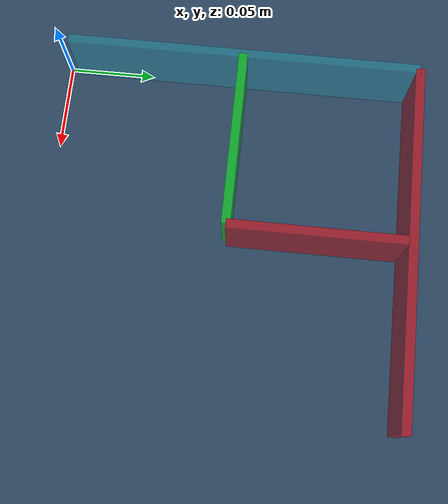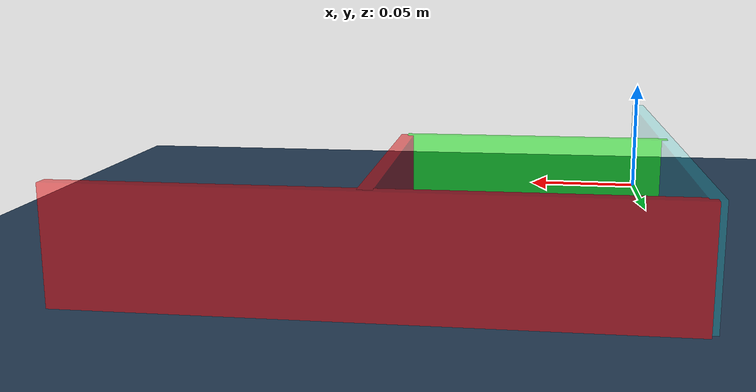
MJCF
<mujoco model="delta_array">
    <visual>
      <headlight diffuse="0.6 0.6 0.6" ambient="0.3 0.3 0.3" specular="0 0 0"/>
      <rgba haze="0.15 0.25 0.35 1"/>
    </visual>

    <asset>
      <texture type="skybox" builtin="gradient" rgb1="0.3 0.5 0.7" rgb2="0 0 0" width="512" height="3072"/>
      <texture type="2d" name="groundplane" builtin="checker" mark="edge" rgb1="0.2 0.3 0.4" rgb2="0.1 0.2 0.3"
        markrgb="0.8 0.8 0.8" width="300" height="300"/>
      <material name="groundplane" texture="groundplane" texuniform="true" texrepeat="5 5" reflectance="0.2"/>
      <material name="collision_material" rgba="0 0 0 0"/> <!-- transparent for collision -->
      <material name="visual_material" rgba="0 0 1 0.3"/> <!-- Blue semi-transparent for visual -->
    </asset>

    <compiler angle="degree" coordinate="local" inertiafromgeom="true" />
    <option timestep="0.01" gravity="0 0 -9.83" />

    <worldbody>
        <light pos="0 0 1.5" dir="0 0 -1" directional="true"/>
        <geom name="floor" size="0 0 0.05" type="plane" material="groundplane"/>
        <body name="base" pos="0 0 0">
            <body name="l1" pos="0 0.105 0.021">
                <joint pos="0 -0.105 0" name="base_jt" type="hinge" axis="0 0 1" limited="true" range="0 3.14" />
                <geom type="box" size="0.02 0.1 0.0025" euler="0 90 0" rgba="0 1 1 0.1" />
                <body name="l2" pos="0.05 0 0">
                    <joint pos="-0.05 0 0" name="l1_jt" type="hinge" axis="0 0 1" limited="true" range="0 3.14" />
                    <geom type="box" size="0.02 0.05 0.0025" euler="90 0 90" rgba="0 1 0 0.5"/>
                    <body name="l3" pos="0.05 0.05 0">
                        <joint pos="0 -0.05 0" name="l2_jt" type="hinge" axis="0 0 1" limited="true" range="0 3.14" />
                        <geom type="box" size="0.02 0.05 0.0025" euler="0 90 0" rgba="1 0 0 0.5"/>
                        <body name="l4" pos="0 0.05 0">
                            <joint pos="0 0 0" name="l3_jt" type="hinge" axis="0 0 1" limited="true" range="0 3.14" />
                            <geom type="box" size="0.02 0.1 0.0025" euler="90 0 90" rgba="1 0 0 0.5"/>
                        </body>
                    </body>
                </body>
            </body>
        </body>

    </worldbody>
    <actuator>
    </actuator>
</mujoco>
